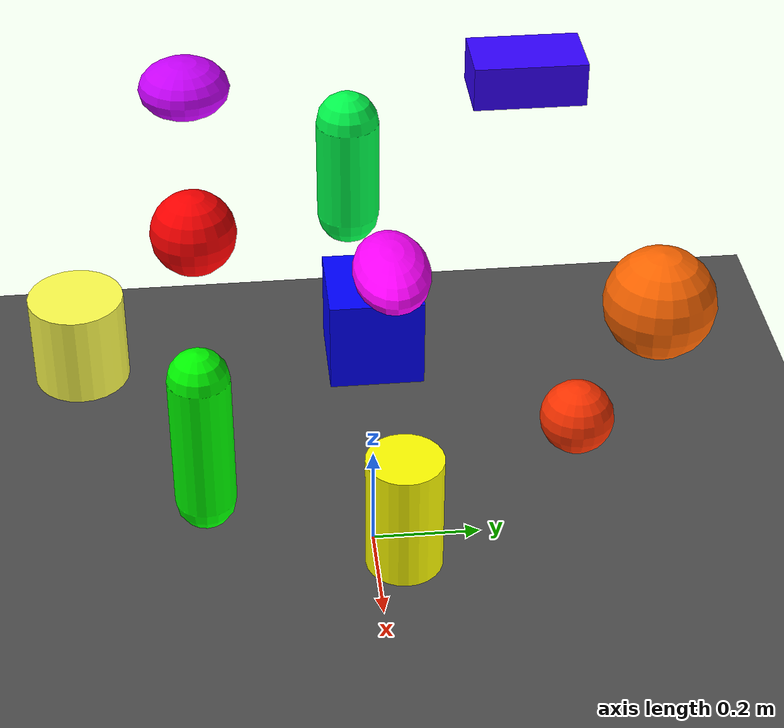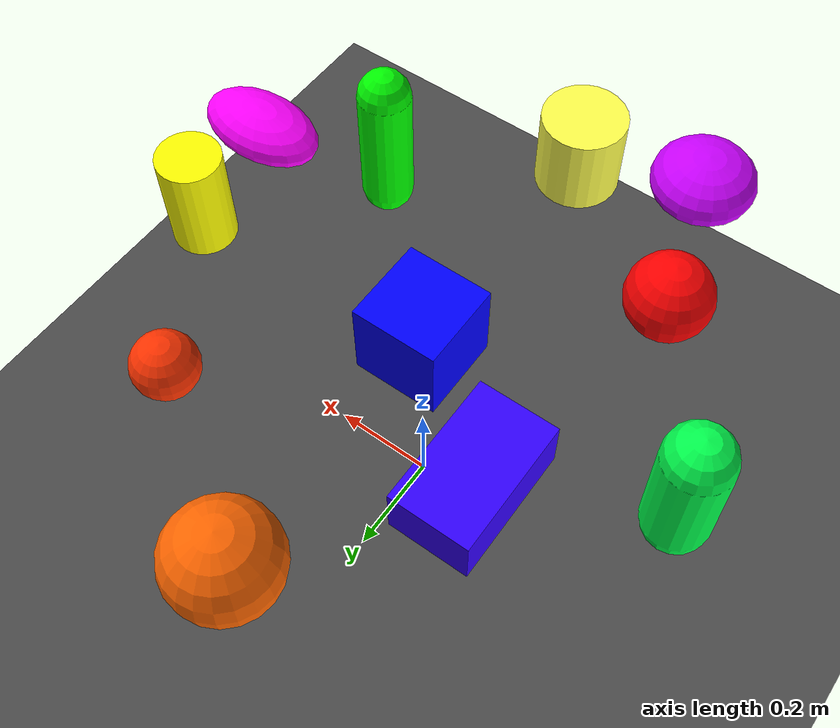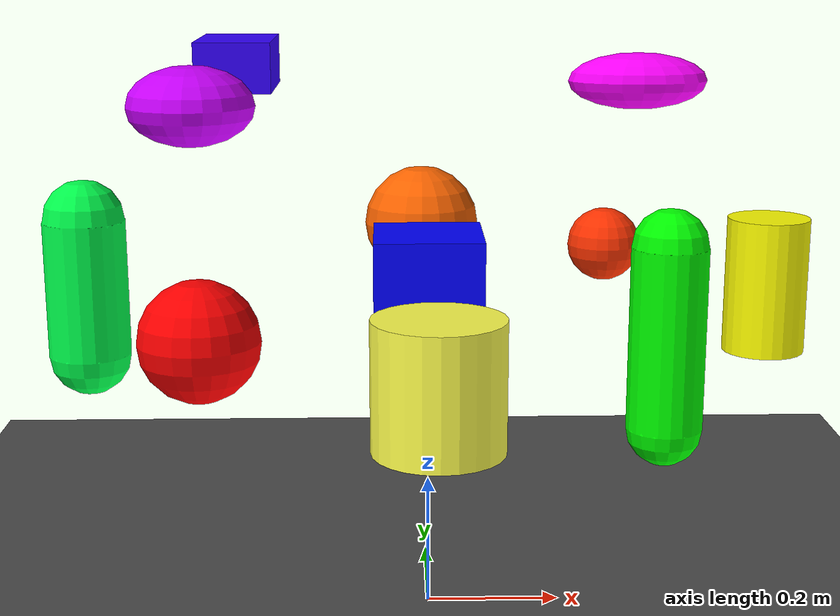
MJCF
<mujoco model="multi_geom_scene">
  <option gravity="0 0 -9.81" timestep="0.002"/>

  <worldbody>
    <geom name="floor" type="plane" size="10 10 0.1" rgba="0.3 0.3 0.3 1"/>

    <!-- Spheres -->
    <body name="sphere1" pos="-0.3 -0.3 0.5">
      <freejoint/>
      <geom type="sphere" size="0.08" mass="0.5" rgba="1 0 0 1"/>
    </body>
    <body name="sphere2" pos="0.3 0.3 0.5">
      <freejoint/>
      <geom type="sphere" size="0.06" mass="0.3" rgba="1 0.2 0 1"/>
    </body>
    <body name="sphere3" pos="0 0.5 0.5">
      <freejoint/>
      <geom type="sphere" size="0.1" mass="0.8" rgba="1 0.4 0 1"/>
    </body>

    <!-- Capsules -->
    <body name="capsule1" pos="0.3 -0.3 0.5">
      <freejoint/>
      <geom type="capsule" size="0.05 0.12" mass="0.5" rgba="0 1 0 1"/>
    </body>
    <body name="capsule2" pos="-0.5 0 0.5">
      <freejoint/>
      <geom type="capsule" size="0.06 0.1" mass="0.4" rgba="0 1 0.3 1"/>
    </body>

    <!-- Boxes -->
    <body name="box1" pos="0 0 0.5">
      <freejoint/>
      <geom type="box" size="0.08 0.08 0.08" mass="0.6" rgba="0 0 1 1"/>
    </body>
    <body name="box2" pos="-0.3 0.3 0.8">
      <freejoint/>
      <geom type="box" size="0.06 0.1 0.04" mass="0.4" rgba="0.2 0 1 1"/>
    </body>

    <!-- Cylinders -->
    <body name="cyl1" pos="0.5 0 0.5">
      <freejoint/>
      <geom type="cylinder" size="0.06 0.1" mass="0.5" rgba="1 1 0 1"/>
    </body>
    <body name="cyl2" pos="0 -0.5 0.5">
      <freejoint/>
      <geom type="cylinder" size="0.08 0.08" mass="0.6" rgba="1 1 0.3 1"/>
    </body>

    <!-- Ellipsoids -->
    <body name="ell1" pos="0.3 0 0.8">
      <freejoint/>
      <geom type="ellipsoid" size="0.1 0.06 0.04" mass="0.4" rgba="1 0 1 1"/>
    </body>
    <body name="ell2" pos="-0.3 -0.3 0.8">
      <freejoint/>
      <geom type="ellipsoid" size="0.08 0.08 0.05" mass="0.5" rgba="0.8 0 1 1"/>
    </body>
  </worldbody>
</mujoco>
